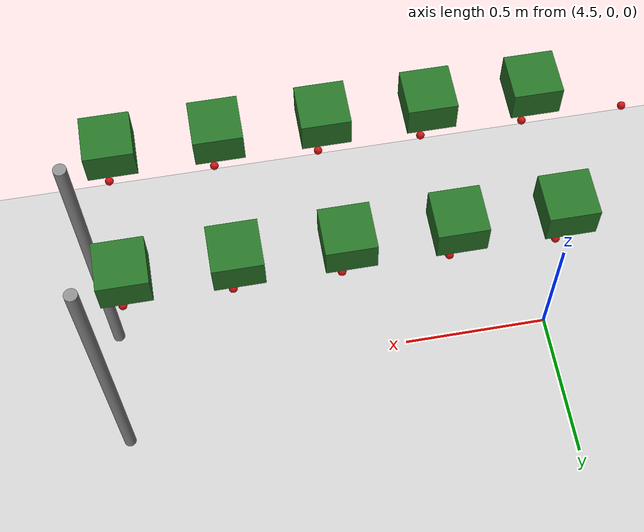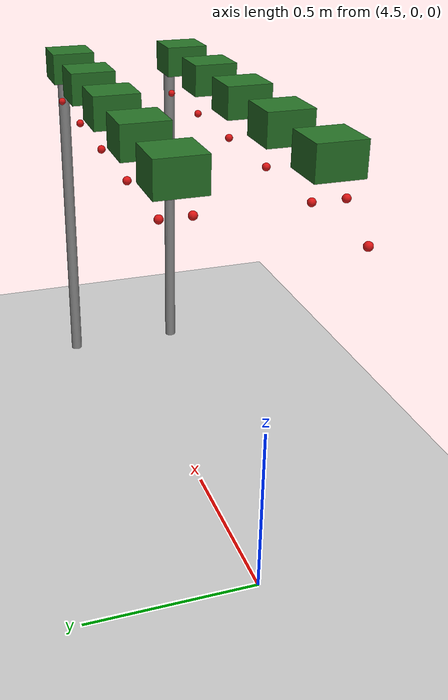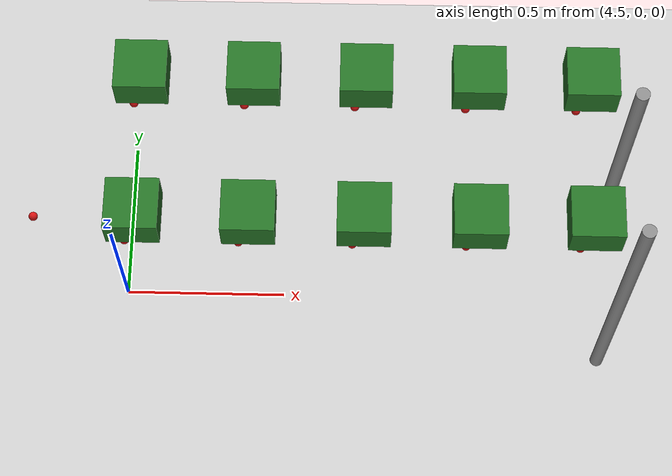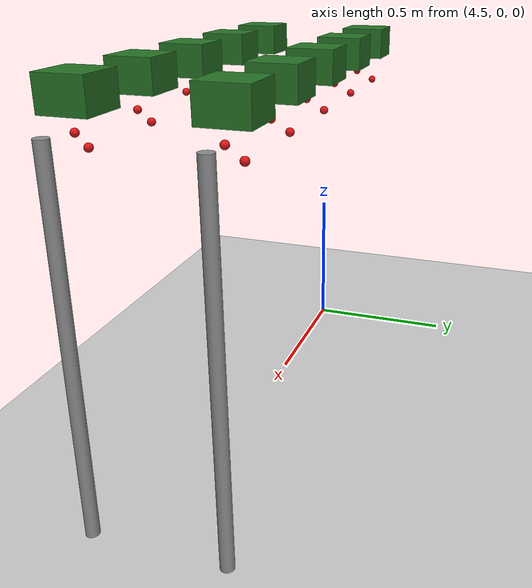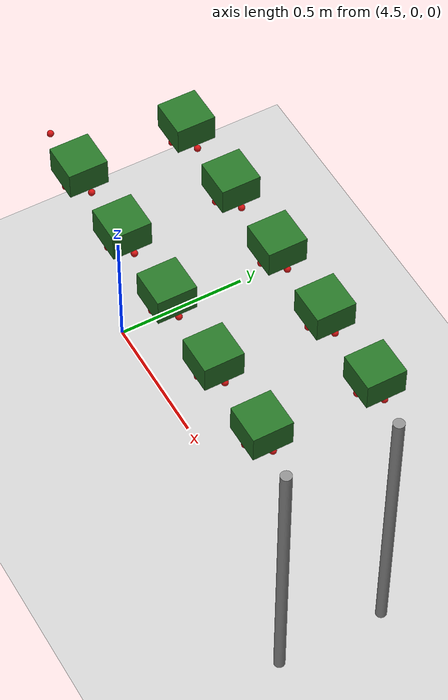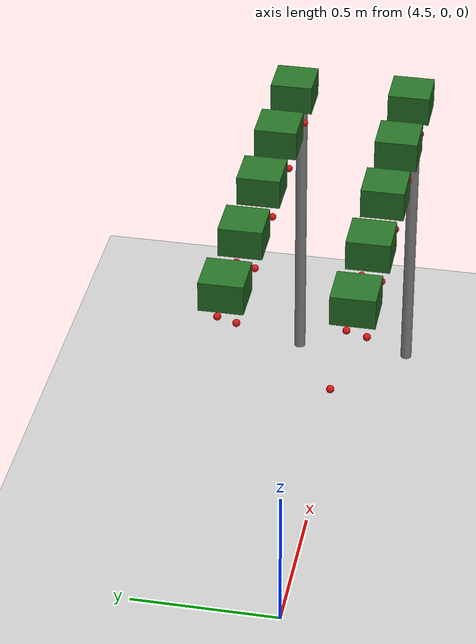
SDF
<sdf version="1.7">
 <world name="irish_polytunnel">
  <include><uri>model://sun</uri></include>
  <include><uri>model://ground_plane</uri></include>
  <model name="row0_L_post3">
   <static>true</static>
   <pose>6.000 0.200 0.550 0 0 0</pose>
   <link name="link">
    <collision name="collision">
     <geometry><cylinder><radius>0.02</radius><length>1.100</length></cylinder></geometry>
    </collision>
    <visual name="visual">
     <geometry><cylinder><radius>0.02</radius><length>1.100</length></cylinder></geometry>
     <material><ambient>0.5 0.5 0.5 1</ambient><diffuse>0.55 0.55 0.55 1</diffuse></material>
    </visual>
   </link>
  </model>
  <model name="row0_L_plant15_foliage">
   <static>true</static>
   <pose>4.650 0.200 1.180 0 0 0</pose>
   <link name="link">
    <visual name="visual">
     <geometry><box><size>0.14 0.14 0.10</size></box></geometry>
     <material><ambient>0.10 0.35 0.10 1</ambient><diffuse>0.15 0.45 0.15 1</diffuse></material>
    </visual>
   </link>
  </model>
  <model name="row0_L_plant15_berry_0">
   <static>true</static>
   <pose>4.620 0.160 1.070 0 0 0</pose>
   <link name="link">
    <visual name="visual">
     <geometry><sphere><radius>0.012</radius></sphere></geometry>
     <material><ambient>0.75 0.05 0.05 1</ambient><diffuse>0.85 0.08 0.08 1</diffuse></material>
    </visual>
   </link>
  </model>
  <model name="row0_L_plant15_berry_1">
   <static>true</static>
   <pose>4.670 0.230 1.050 0 0 0</pose>
   <link name="link">
    <visual name="visual">
     <geometry><sphere><radius>0.012</radius></sphere></geometry>
     <material><ambient>0.75 0.05 0.05 1</ambient><diffuse>0.85 0.08 0.08 1</diffuse></material>
    </visual>
   </link>
  </model>
  <model name="row0_L_plant16_foliage">
   <static>true</static>
   <pose>4.950 0.200 1.180 0 0 0</pose>
   <link name="link">
    <visual name="visual">
     <geometry><box><size>0.14 0.14 0.10</size></box></geometry>
     <material><ambient>0.10 0.35 0.10 1</ambient><diffuse>0.15 0.45 0.15 1</diffuse></material>
    </visual>
   </link>
  </model>
  <model name="row0_L_plant16_berry_0">
   <static>true</static>
   <pose>4.920 0.160 1.070 0 0 0</pose>
   <link name="link">
    <visual name="visual">
     <geometry><sphere><radius>0.012</radius></sphere></geometry>
     <material><ambient>0.75 0.05 0.05 1</ambient><diffuse>0.85 0.08 0.08 1</diffuse></material>
    </visual>
   </link>
  </model>
  <model name="row0_L_plant16_berry_1">
   <static>true</static>
   <pose>4.970 0.230 1.050 0 0 0</pose>
   <link name="link">
    <visual name="visual">
     <geometry><sphere><radius>0.012</radius></sphere></geometry>
     <material><ambient>0.75 0.05 0.05 1</ambient><diffuse>0.85 0.08 0.08 1</diffuse></material>
    </visual>
   </link>
  </model>
  <model name="row0_L_plant17_foliage">
   <static>true</static>
   <pose>5.250 0.200 1.180 0 0 0</pose>
   <link name="link">
    <visual name="visual">
     <geometry><box><size>0.14 0.14 0.10</size></box></geometry>
     <material><ambient>0.10 0.35 0.10 1</ambient><diffuse>0.15 0.45 0.15 1</diffuse></material>
    </visual>
   </link>
  </model>
  <model name="row0_L_plant17_berry_0">
   <static>true</static>
   <pose>5.220 0.160 1.070 0 0 0</pose>
   <link name="link">
    <visual name="visual">
     <geometry><sphere><radius>0.012</radius></sphere></geometry>
     <material><ambient>0.75 0.05 0.05 1</ambient><diffuse>0.85 0.08 0.08 1</diffuse></material>
    </visual>
   </link>
  </model>
  <model name="row0_L_plant17_berry_1">
   <static>true</static>
   <pose>5.270 0.230 1.050 0 0 0</pose>
   <link name="link">
    <visual name="visual">
     <geometry><sphere><radius>0.012</radius></sphere></geometry>
     <material><ambient>0.75 0.05 0.05 1</ambient><diffuse>0.85 0.08 0.08 1</diffuse></material>
    </visual>
   </link>
  </model>
  <model name="row0_L_plant18_foliage">
   <static>true</static>
   <pose>5.550 0.200 1.180 0 0 0</pose>
   <link name="link">
    <visual name="visual">
     <geometry><box><size>0.14 0.14 0.10</size></box></geometry>
     <material><ambient>0.10 0.35 0.10 1</ambient><diffuse>0.15 0.45 0.15 1</diffuse></material>
    </visual>
   </link>
  </model>
  <model name="row0_L_plant18_berry_0">
   <static>true</static>
   <pose>5.520 0.160 1.070 0 0 0</pose>
   <link name="link">
    <visual name="visual">
     <geometry><sphere><radius>0.012</radius></sphere></geometry>
     <material><ambient>0.75 0.05 0.05 1</ambient><diffuse>0.85 0.08 0.08 1</diffuse></material>
    </visual>
   </link>
  </model>
  <model name="row0_L_plant18_berry_1">
   <static>true</static>
   <pose>5.570 0.230 1.050 0 0 0</pose>
   <link name="link">
    <visual name="visual">
     <geometry><sphere><radius>0.012</radius></sphere></geometry>
     <material><ambient>0.75 0.05 0.05 1</ambient><diffuse>0.85 0.08 0.08 1</diffuse></material>
    </visual>
   </link>
  </model>
  <model name="row0_L_plant19_foliage">
   <static>true</static>
   <pose>5.850 0.200 1.180 0 0 0</pose>
   <link name="link">
    <visual name="visual">
     <geometry><box><size>0.14 0.14 0.10</size></box></geometry>
     <material><ambient>0.10 0.35 0.10 1</ambient><diffuse>0.15 0.45 0.15 1</diffuse></material>
    </visual>
   </link>
  </model>
  <model name="row0_L_plant19_berry_0">
   <static>true</static>
   <pose>5.820 0.160 1.070 0 0 0</pose>
   <link name="link">
    <visual name="visual">
     <geometry><sphere><radius>0.012</radius></sphere></geometry>
     <material><ambient>0.75 0.05 0.05 1</ambient><diffuse>0.85 0.08 0.08 1</diffuse></material>
    </visual>
   </link>
  </model>
  <model name="row0_L_plant19_berry_1">
   <static>true</static>
   <pose>5.870 0.230 1.050 0 0 0</pose>
   <link name="link">
    <visual name="visual">
     <geometry><sphere><radius>0.012</radius></sphere></geometry>
     <material><ambient>0.75 0.05 0.05 1</ambient><diffuse>0.85 0.08 0.08 1</diffuse></material>
    </visual>
   </link>
  </model>
  <model name="row0_R_post3">
   <static>true</static>
   <pose>6.000 -0.200 0.550 0 0 0</pose>
   <link name="link">
    <collision name="collision">
     <geometry><cylinder><radius>0.02</radius><length>1.100</length></cylinder></geometry>
    </collision>
    <visual name="visual">
     <geometry><cylinder><radius>0.02</radius><length>1.100</length></cylinder></geometry>
     <material><ambient>0.5 0.5 0.5 1</ambient><diffuse>0.55 0.55 0.55 1</diffuse></material>
    </visual>
   </link>
  </model>
  <model name="row0_R_plant14_berry_1">
   <static>true</static>
   <pose>4.370 -0.170 1.050 0 0 0</pose>
   <link name="link">
    <visual name="visual">
     <geometry><sphere><radius>0.012</radius></sphere></geometry>
     <material><ambient>0.75 0.05 0.05 1</ambient><diffuse>0.85 0.08 0.08 1</diffuse></material>
    </visual>
   </link>
  </model>
  <model name="row0_R_plant15_foliage">
   <static>true</static>
   <pose>4.650 -0.200 1.180 0 0 0</pose>
   <link name="link">
    <visual name="visual">
     <geometry><box><size>0.14 0.14 0.10</size></box></geometry>
     <material><ambient>0.10 0.35 0.10 1</ambient><diffuse>0.15 0.45 0.15 1</diffuse></material>
    </visual>
   </link>
  </model>
  <model name="row0_R_plant15_berry_0">
   <static>true</static>
   <pose>4.620 -0.240 1.070 0 0 0</pose>
   <link name="link">
    <visual name="visual">
     <geometry><sphere><radius>0.012</radius></sphere></geometry>
     <material><ambient>0.75 0.05 0.05 1</ambient><diffuse>0.85 0.08 0.08 1</diffuse></material>
    </visual>
   </link>
  </model>
  <model name="row0_R_plant15_berry_1">
   <static>true</static>
   <pose>4.670 -0.170 1.050 0 0 0</pose>
   <link name="link">
    <visual name="visual">
     <geometry><sphere><radius>0.012</radius></sphere></geometry>
     <material><ambient>0.75 0.05 0.05 1</ambient><diffuse>0.85 0.08 0.08 1</diffuse></material>
    </visual>
   </link>
  </model>
  <model name="row0_R_plant16_foliage">
   <static>true</static>
   <pose>4.950 -0.200 1.180 0 0 0</pose>
   <link name="link">
    <visual name="visual">
     <geometry><box><size>0.14 0.14 0.10</size></box></geometry>
     <material><ambient>0.10 0.35 0.10 1</ambient><diffuse>0.15 0.45 0.15 1</diffuse></material>
    </visual>
   </link>
  </model>
  <model name="row0_R_plant16_berry_0">
   <static>true</static>
   <pose>4.920 -0.240 1.070 0 0 0</pose>
   <link name="link">
    <visual name="visual">
     <geometry><sphere><radius>0.012</radius></sphere></geometry>
     <material><ambient>0.75 0.05 0.05 1</ambient><diffuse>0.85 0.08 0.08 1</diffuse></material>
    </visual>
   </link>
  </model>
  <model name="row0_R_plant16_berry_1">
   <static>true</static>
   <pose>4.970 -0.170 1.050 0 0 0</pose>
   <link name="link">
    <visual name="visual">
     <geometry><sphere><radius>0.012</radius></sphere></geometry>
     <material><ambient>0.75 0.05 0.05 1</ambient><diffuse>0.85 0.08 0.08 1</diffuse></material>
    </visual>
   </link>
  </model>
  <model name="row0_R_plant17_foliage">
   <static>true</static>
   <pose>5.250 -0.200 1.180 0 0 0</pose>
   <link name="link">
    <visual name="visual">
     <geometry><box><size>0.14 0.14 0.10</size></box></geometry>
     <material><ambient>0.10 0.35 0.10 1</ambient><diffuse>0.15 0.45 0.15 1</diffuse></material>
    </visual>
   </link>
  </model>
  <model name="row0_R_plant17_berry_0">
   <static>true</static>
   <pose>5.220 -0.240 1.070 0 0 0</pose>
   <link name="link">
    <visual name="visual">
     <geometry><sphere><radius>0.012</radius></sphere></geometry>
     <material><ambient>0.75 0.05 0.05 1</ambient><diffuse>0.85 0.08 0.08 1</diffuse></material>
    </visual>
   </link>
  </model>
  <model name="row0_R_plant17_berry_1">
   <static>true</static>
   <pose>5.270 -0.170 1.050 0 0 0</pose>
   <link name="link">
    <visual name="visual">
     <geometry><sphere><radius>0.012</radius></sphere></geometry>
     <material><ambient>0.75 0.05 0.05 1</ambient><diffuse>0.85 0.08 0.08 1</diffuse></material>
    </visual>
   </link>
  </model>
  <model name="row0_R_plant18_foliage">
   <static>true</static>
   <pose>5.550 -0.200 1.180 0 0 0</pose>
   <link name="link">
    <visual name="visual">
     <geometry><box><size>0.14 0.14 0.10</size></box></geometry>
     <material><ambient>0.10 0.35 0.10 1</ambient><diffuse>0.15 0.45 0.15 1</diffuse></material>
    </visual>
   </link>
  </model>
  <model name="row0_R_plant18_berry_0">
   <static>true</static>
   <pose>5.520 -0.240 1.070 0 0 0</pose>
   <link name="link">
    <visual name="visual">
     <geometry><sphere><radius>0.012</radius></sphere></geometry>
     <material><ambient>0.75 0.05 0.05 1</ambient><diffuse>0.85 0.08 0.08 1</diffuse></material>
    </visual>
   </link>
  </model>
  <model name="row0_R_plant18_berry_1">
   <static>true</static>
   <pose>5.570 -0.170 1.050 0 0 0</pose>
   <link name="link">
    <visual name="visual">
     <geometry><sphere><radius>0.012</radius></sphere></geometry>
     <material><ambient>0.75 0.05 0.05 1</ambient><diffuse>0.85 0.08 0.08 1</diffuse></material>
    </visual>
   </link>
  </model>
  <model name="row0_R_plant19_foliage">
   <static>true</static>
   <pose>5.850 -0.200 1.180 0 0 0</pose>
   <link name="link">
    <visual name="visual">
     <geometry><box><size>0.14 0.14 0.10</size></box></geometry>
     <material><ambient>0.10 0.35 0.10 1</ambient><diffuse>0.15 0.45 0.15 1</diffuse></material>
    </visual>
   </link>
  </model>
  <model name="row0_R_plant19_berry_0">
   <static>true</static>
   <pose>5.820 -0.240 1.070 0 0 0</pose>
   <link name="link">
    <visual name="visual">
     <geometry><sphere><radius>0.012</radius></sphere></geometry>
     <material><ambient>0.75 0.05 0.05 1</ambient><diffuse>0.85 0.08 0.08 1</diffuse></material>
    </visual>
   </link>
  </model>
  <model name="row0_R_plant19_berry_1">
   <static>true</static>
   <pose>5.870 -0.170 1.050 0 0 0</pose>
   <link name="link">
    <visual name="visual">
     <geometry><sphere><radius>0.012</radius></sphere></geometry>
     <material><ambient>0.75 0.05 0.05 1</ambient><diffuse>0.85 0.08 0.08 1</diffuse></material>
    </visual>
   </link>
  </model>
 </world>
</sdf>
